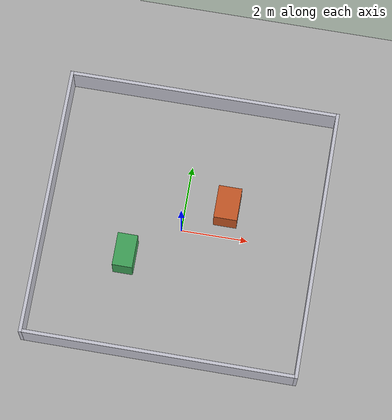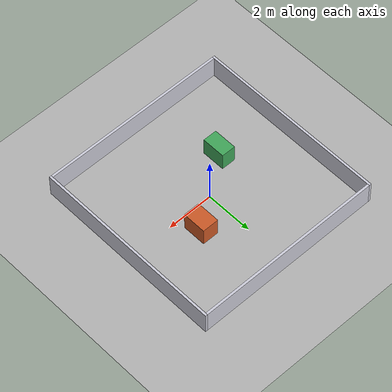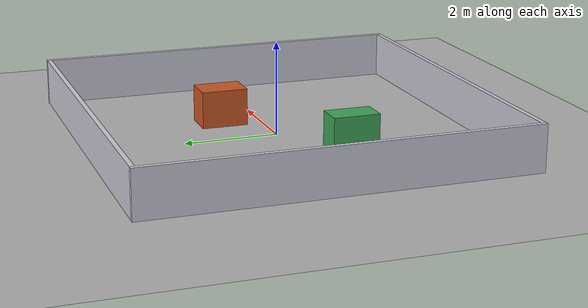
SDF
<?xml version="1.0"?>
<sdf version="1.6">
  <world name="learning_room">
    <gravity>0 0 -9.81</gravity>
    <physics name="ode" type="ode">
      <max_step_size>0.001</max_step_size><real_time_update_rate>1000</real_time_update_rate>
      <ode><solver><type>quick</type><iters>50</iters></solver></ode>
    </physics>
    <scene><ambient>0.6 0.6 0.6 1</ambient><background>0.85 0.9 0.95 1</background></scene>
    <light name="sun" type="directional">
      <cast_shadows>true</cast_shadows><pose>0 0 10 0 0 0</pose>
      <diffuse>0.8 0.8 0.8 1</diffuse><specular>0.2 0.2 0.2 1</specular>
      <direction>-0.5 0.1 -0.9</direction>
    </light>
    <!-- All geometry is inline: no Gazebo model download is required. -->
    <model name="ground">
      <static>true</static>
      <link name="ground_link">
        <collision name="collision"><geometry><plane><normal>0 0 1</normal><size>30 30</size></plane></geometry></collision>
        <visual name="visual"><geometry><plane><normal>0 0 1</normal><size>30 30</size></plane></geometry><material><ambient>0.7 0.7 0.7 1</ambient><diffuse>0.7 0.7 0.7 1</diffuse></material></visual>
      </link>
    </model>
    <model name="east_wall"><static>true</static><pose>4.05 0 0.5 0 0 0</pose><link name="link">
      <collision name="collision"><geometry><box><size>0.1 8.2 1</size></box></geometry></collision>
      <visual name="visual"><geometry><box><size>0.1 8.2 1</size></box></geometry><material><ambient>0.8 0.8 0.85 1</ambient><diffuse>0.8 0.8 0.85 1</diffuse></material></visual>
    </link></model>
    <model name="west_wall"><static>true</static><pose>-4.05 0 0.5 0 0 0</pose><link name="link">
      <collision name="collision"><geometry><box><size>0.1 8.2 1</size></box></geometry></collision>
      <visual name="visual"><geometry><box><size>0.1 8.2 1</size></box></geometry><material><ambient>0.8 0.8 0.85 1</ambient><diffuse>0.8 0.8 0.85 1</diffuse></material></visual>
    </link></model>
    <model name="north_wall"><static>true</static><pose>0 4.05 0.5 0 0 0</pose><link name="link">
      <collision name="collision"><geometry><box><size>8 0.1 1</size></box></geometry></collision>
      <visual name="visual"><geometry><box><size>8 0.1 1</size></box></geometry><material><ambient>0.8 0.8 0.85 1</ambient><diffuse>0.8 0.8 0.85 1</diffuse></material></visual>
    </link></model>
    <model name="south_wall"><static>true</static><pose>0 -4.05 0.5 0 0 0</pose><link name="link">
      <collision name="collision"><geometry><box><size>8 0.1 1</size></box></geometry></collision>
      <visual name="visual"><geometry><box><size>8 0.1 1</size></box></geometry><material><ambient>0.8 0.8 0.85 1</ambient><diffuse>0.8 0.8 0.85 1</diffuse></material></visual>
    </link></model>
    <model name="box1"><static>true</static><pose>1.25 0.85 0.4 0 0 0</pose><link name="link">
      <collision name="collision"><geometry><box><size>0.7 1.0 0.8</size></box></geometry></collision>
      <visual name="visual"><geometry><box><size>0.7 1.0 0.8</size></box></geometry><material><ambient>0.8 0.35 0.15 1</ambient><diffuse>0.8 0.35 0.15 1</diffuse></material></visual>
    </link></model>
    <model name="box2"><static>true</static><pose>-1.5 -1.1 0.4 0 0 0</pose><link name="link">
      <collision name="collision"><geometry><box><size>0.6 1.0 0.8</size></box></geometry></collision>
      <visual name="visual"><geometry><box><size>0.6 1.0 0.8</size></box></geometry><material><ambient>0.25 0.65 0.35 1</ambient><diffuse>0.25 0.65 0.35 1</diffuse></material></visual>
    </link></model>
    <gui><camera name="overview"><pose>7 -8 8 0 0.6 2.25</pose></camera></gui>
  </world>
</sdf>
